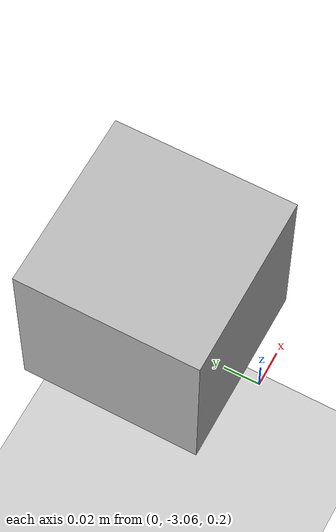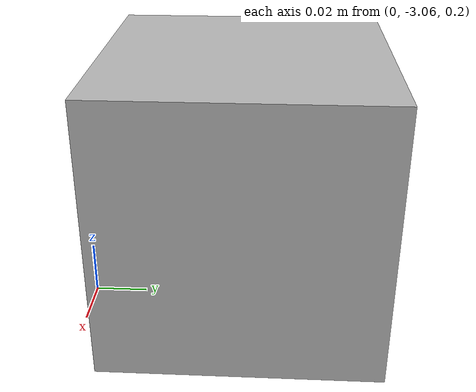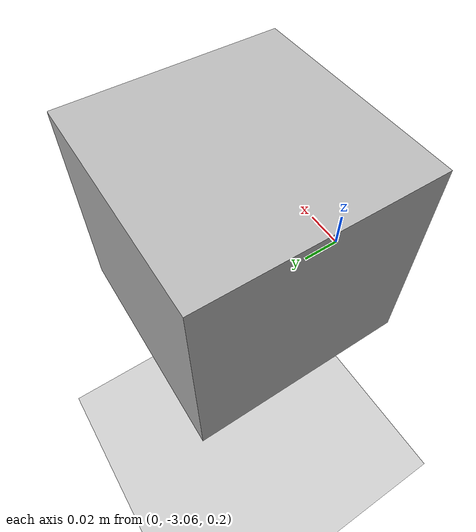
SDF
<sdf version="1.4">
<world name="default">
    <include>
        <uri>model://sun</uri>
    </include>

    <gravity>0 0 -9.80665</gravity>

    <plugin name='lr_gym_ros_env' filename='libgazebo_gym_env_plugin.so'/>

    <physics name="bullet_5x" type="bullet" default="true">
      <max_step_size>0.0041666</max_step_size> <!-- 240fps, bullet should be optimized for this frequency -->
      <real_time_update_rate>1200</real_time_update_rate> <!-- steps done in each real-time second, -1 does as many as possible-->
      <bullet>
        <solver>
          <type>sequential_impulse</type>
          <iters>10</iters>
          <sor>1</sor>
        </solver>
        <constraints>
          <cfm>0</cfm>
          <erp>0.2</erp>
          <contact_surface_layer>0.001</contact_surface_layer>
          <split_impulse>1</split_impulse>
          <split_impulse_penetration_threshold>-0.04</split_impulse_penetration_threshold>
        </constraints>
      </bullet>
    </physics>

    <physics name="bullet_walltime" type="bullet" default="true">
      <max_step_size>0.0041666</max_step_size> <!-- 240fps, bullet should be optimized for this frequency -->
      <real_time_update_rate>240</real_time_update_rate> <!-- steps done in each real-time second, -1 does as many as possible-->
      <bullet>
        <solver>
          <type>sequential_impulse</type>
          <iters>10</iters>
          <sor>1</sor>
        </solver>
        <constraints>
          <cfm>0</cfm>
          <erp>0.2</erp>
          <contact_surface_layer>0.001</contact_surface_layer>
          <split_impulse>1</split_impulse>
          <split_impulse_penetration_threshold>-0.04</split_impulse_penetration_threshold>
        </constraints>
      </bullet>
    </physics>

    <physics name="bullet_unlimited" type="bullet" default="true">
      <max_step_size>0.0041666</max_step_size> <!-- 240fps, bullet should be optimized for this frequency -->
      <real_time_update_rate>-1</real_time_update_rate> <!-- steps done in each real-time second, -1 does as many as possible-->
      <bullet>
        <solver>
          <type>sequential_impulse</type>
          <iters>10</iters>
          <sor>1</sor>
        </solver>
        <constraints>
          <cfm>0</cfm>
          <erp>0.2</erp>
          <contact_surface_layer>0.001</contact_surface_layer>
          <split_impulse>1</split_impulse>
          <split_impulse_penetration_threshold>-0.04</split_impulse_penetration_threshold>
        </constraints>
      </bullet>
    </physics>

    <physics name="ode_5x" type="ode" default="true">
      <max_step_size>0.001</max_step_size>
      <real_time_update_rate>5000</real_time_update_rate> <!-- steps done in each real-time second, -1 does as many as possible-->
      <ode>
        <solver>
          <island_threads>4</island_threads>
        </solver>
      </ode>
    </physics>

    <physics name="ode_walltime" type="ode" default="true">
      <max_step_size>0.001</max_step_size>
      <real_time_update_rate>1000</real_time_update_rate> <!-- steps done in each real-time second, -1 does as many as possible-->
      <ode>
        <solver>
          <island_threads>4</island_threads>
        </solver>
      </ode>
    </physics>

    <physics name="ode_unlimited" type="ode" default="true">
      <max_step_size>0.001</max_step_size>
      <real_time_update_rate>-1</real_time_update_rate> <!-- steps done in each real-time second, -1 does as many as possible-->
      <ode>
        <solver>
          <island_threads>4</island_threads>
        </solver>
      </ode>
    </physics>

    <model name="ground_plane">
      <static>true</static>
      <link name="ground_plane">
        <visual name="visual">
          <geometry>
            <plane>
              <normal>0 0 1</normal>
              <size>100 100</size>
            </plane>
          </geometry>
          <material>
            <script>
              <name>Gazebo/Grey</name>
            </script>
          </material>
        </visual>
        <collision name="collision">
          <geometry>
            <plane>
              <normal>0 0 1</normal>
              <size>100 100</size>
            </plane>
          </geometry>
          <surface>
            <contact>
              <ode>
                <kp>2e+05</kp>
                <kd>80</kd>
                <!-- Equivalent to CFM = 10e-2, ERP = 0.2, with step size = 10^-3,
                    See http://www.ode.org/ode-latest-userguide.html#sec_3_8_2 -->
              </ode>
            </contact>
            <friction>
              <torsional>
                <coefficient>0.5</coefficient>
              </torsional>
              <ode>  <!-- gazebo reads the ode tag even for bullet, see https://github.com/osrf/gazebo/blob/gazebo9/gazebo/physics/bullet/BulletSurfaceParams.cc -->
                <mu>1</mu>
                <mu2>1</mu2>
              </ode>
            </friction>
          </surface>
        </collision>
      </link>
    </model>

    <model name='camera'>
      <static>true</static>
      <link name='link'>
        <visual name='visual'>
          <geometry>
            <box>
              <size>0.1 0.1 0.1</size>
            </box>
          </geometry>
        </visual>
        <sensor name='camera' type='camera'>
      		<camera name='__default__'>
      			<horizontal_fov>1.047</horizontal_fov>
      			<image>
              <height>120</height>
      				<width>213</width>

      			</image>
      			<clip>
      				<near>0.1</near>
      				<far>100</far>
      			</clip>
      			<distortion>
      				<k1>-0.25</k1>
      				<k2>0.12</k2>
      				<k3>0</k3>
      				<p1>-0.00028</p1>
      				<p2>-5e-05</p2>
      				<center>0.5 0.5</center>
      			</distortion>
      		</camera>
      		<plugin name="camera_controller" filename="libgazebo_ros_camera.so">
      			<alwaysOn>true</alwaysOn>
      			<updateRate>0.0</updateRate>
      			<cameraName>fixed_camera_world/camera</cameraName>
      			<imageTopicName>image_raw</imageTopicName>
      			<cameraInfoTopicName>camera_info</cameraInfoTopicName>
      			<frameName>camera_link</frameName>
      			<hackBaseline>0.07</hackBaseline>
      			<distortionK1>0.0</distortionK1>
      			<distortionK2>0.0</distortionK2>
      			<distortionK3>0.0</distortionK3>
      			<distortionT1>0.0</distortionT1>
      			<distortionT2>0.0</distortionT2>
      		</plugin>
      		<always_on>1</always_on>
      		<update_rate>30</update_rate>
      		<visualize>1</visualize>
        </sensor>
        <self_collide>0</self_collide>
        <enable_wind>0</enable_wind>
        <kinematic>0</kinematic>
      </link>
      <pose frame=''>0.0 -3.0 0.25 0 0 1.57</pose>
    </model>
</world>
</sdf>
